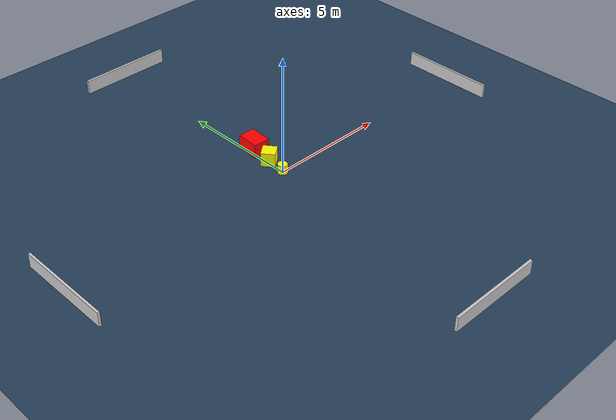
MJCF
<?xml version="1.0" ?>
<mujoco model="generated_environment">
  <option timestep="0.01" integrator="RK4" cone="elliptic"/>
  <default>
    <geom density="1"/>
  </default>
  <asset>
    <texture builtin="gradient" height="3072" name="skybox" rgb1="0.3 0.5 0.7" rgb2="0 0 0" type="skybox" width="512"/>
    <texture builtin="checker" height="300" name="groundplane" rgb1="0.2 0.3 0.4" rgb2="0.1 0.2 0.3" type="2d" width="300"/>
    <material name="groundplane" reflectance="0.2" texrepeat="5 5" texture="groundplane"/>
  </asset>
  <worldbody>
    <light dir="0 0 -1" directional="true" pos="0 0 1.5"/>
    <geom condim="3" friction="0.5 0.005 0.001" material="groundplane" name="floor" pos="0 0 0" size="0 0 0.05" type="plane"/>
    <body name="walls">
      <geom name="wall_1" condim="4" pos="-10.0 0.0 0.3" rgba="0.800000011920929 0.800000011920929 0.800000011920929 1.0" size="0.05 2.0 0.3" type="box"/>
      <geom name="wall_2" condim="4" pos="10.0 0.0 0.3" rgba="0.800000011920929 0.800000011920929 0.800000011920929 1.0" size="0.05 2.0 0.3" type="box"/>
      <geom name="wall_3" condim="4" pos="0.0 -10.0 0.3" rgba="0.800000011920929 0.800000011920929 0.800000011920929 1.0" size="2.0 0.05 0.3" type="box"/>
      <geom name="wall_4" condim="4" pos="0.0 10.0 0.3" rgba="0.800000011920929 0.800000011920929 0.800000011920929 1.0" size="2.0 0.05 0.3" type="box"/>
    </body>
    <body name="robot">
      <joint name="joint_x" type="slide" pos="0 0 0" axis="1 0 0"/>
      <joint name="joint_y" type="slide" pos="0 0 0" axis="0 1 0"/>
      <geom name="robot" type="cylinder" pos="0.0 0.0 0.2" size="0.2 0.2 0.0" mass="5.0" friction="1.0 0.005 0.0001" condim="4" rgba="1.0 1.0 0.0 1.0"/>
    </body>
    <body name="obstacle_1_movable">
      <geom name="obstacle_1_movable" condim="4" pos="0.06864563894078611 0.8348679921830598 0.3" euler="0 0 37.45886235673429" friction="0.0 0.005 0.001" rgba="1.0 1.0 0.0 1.0" size="0.2908483650435704 0.2895430208142654 0.3" type="box" mass="0.1"/>
      <joint type="free"/>
    </body>
    <body name="obstacle_2_static">
      <geom name="obstacle_2_static" condim="4" pos="0.24893024882226825 1.8898319190975756 0.3" euler="0 0 356.2586767846467" friction="0.0 0.005 0.001" rgba="1.0 0.0 0.0 1.0" size="0.3532127638735253 0.4813627454115253 0.3" type="box"/>
    </body>
  </worldbody>
  <actuator>
    <motor name="actuator_x" joint="joint_x" gear="1" ctrlrange="-1 1"/>
    <motor name="actuator_y" joint="joint_y" gear="1" ctrlrange="-1 1"/>
  </actuator>
</mujoco>
